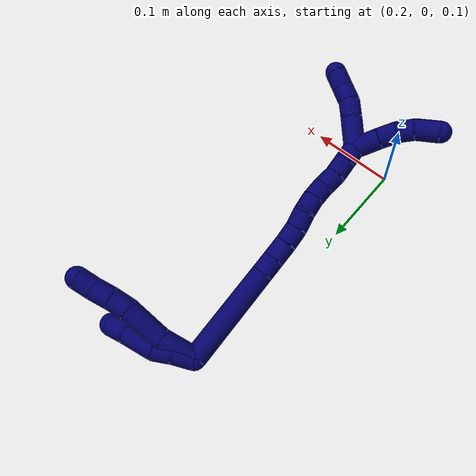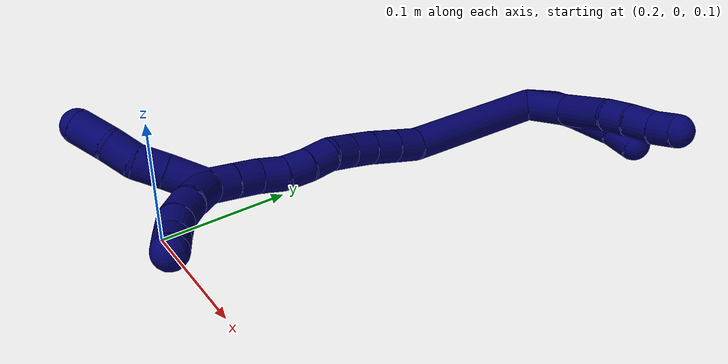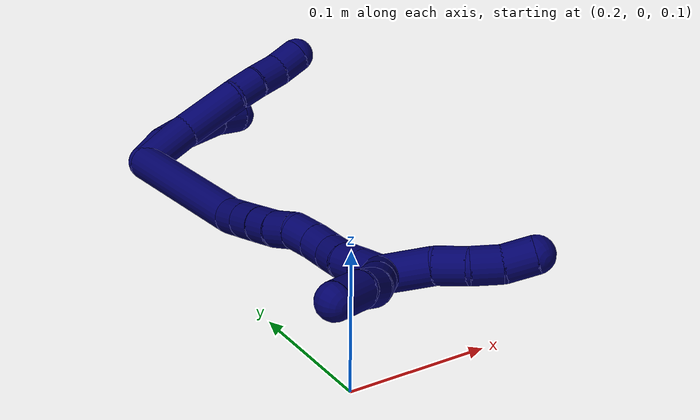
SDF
<sdf version="1.7">
 <world name="default">
  <model name="7">
   <static>0</static>
   <link name="7">
    <collision name="collision-cylinder-e_1_2_8">
     <pose>0.009123 0.018206 -0.00235 -1.69914 0.46122 -0.521892</pose>
     <geometry><cylinder><radius>0.0125</radius><length>0.040998</length></cylinder></geometry>
     <surface>
      <friction><ode><mu>1.16</mu><mu2>1.16</mu2><slip1>0</slip1><slip2>0</slip2></ode></friction>
      <contact><ode><kp>1e+06</kp><kd>1</kd><max_vel>0</max_vel><min_depth>0.001</min_depth></ode></contact>
     </surface>
    </collision>
    <visual name="visual-cylinder-e_1_2_8">
     <pose>0.009123 0.018206 -0.00235 -1.69914 0.46122 -0.521892</pose>
     <geometry><cylinder><radius>0.0125</radius><length>0.040998</length></cylinder></geometry>
     <material><ambient>0.003922 0 0.403922 1</ambient></material>
    </visual>
    <collision name="collision-cylinder-e_2_8_9">
     <pose>0.026501 0.058035 -0.002812 -1.48372 0.36345 -0.333688</pose>
     <geometry><cylinder><radius>0.0125</radius><length>0.046444</length></cylinder></geometry>
     <surface>
      <friction><ode><mu>1.16</mu><mu2>1.16</mu2><slip1>0</slip1><slip2>0</slip2></ode></friction>
      <contact><ode><kp>1e+06</kp><kd>1</kd><max_vel>0</max_vel><min_depth>0.001</min_depth></ode></contact>
     </surface>
    </collision>
    <visual name="visual-cylinder-e_2_8_9">
     <pose>0.026501 0.058035 -0.002812 -1.48372 0.36345 -0.333688</pose>
     <geometry><cylinder><radius>0.0125</radius><length>0.046444</length></cylinder></geometry>
     <material><ambient>0.003922 0 0.403922 1</ambient></material>
    </visual>
    <collision name="collision-cylinder-e_3_9_10">
     <pose>0.039763 0.088375 -0.00147 -1.63332 0.520448 -0.552416</pose>
     <geometry><cylinder><radius>0.0125</radius><length>0.020135</length></cylinder></geometry>
     <surface>
      <friction><ode><mu>1.16</mu><mu2>1.16</mu2><slip1>0</slip1><slip2>0</slip2></ode></friction>
      <contact><ode><kp>1e+06</kp><kd>1</kd><max_vel>0</max_vel><min_depth>0.001</min_depth></ode></contact>
     </surface>
    </collision>
    <visual name="visual-cylinder-e_3_9_10">
     <pose>0.039763 0.088375 -0.00147 -1.63332 0.520448 -0.552416</pose>
     <geometry><cylinder><radius>0.0125</radius><length>0.020135</length></cylinder></geometry>
     <material><ambient>0.003922 0 0.403922 1</ambient></material>
    </visual>
    <collision name="collision-cylinder-e_4_10_11">
     <pose>0.050996 0.105985 -0.003204 -1.70371 0.60677 -0.687015</pose>
     <geometry><cylinder><radius>0.0125</radius><length>0.021841</length></cylinder></geometry>
     <surface>
      <friction><ode><mu>1.16</mu><mu2>1.16</mu2><slip1>0</slip1><slip2>0</slip2></ode></friction>
      <contact><ode><kp>1e+06</kp><kd>1</kd><max_vel>0</max_vel><min_depth>0.001</min_depth></ode></contact>
     </surface>
    </collision>
    <visual name="visual-cylinder-e_4_10_11">
     <pose>0.050996 0.105985 -0.003204 -1.70371 0.60677 -0.687015</pose>
     <geometry><cylinder><radius>0.0125</radius><length>0.021841</length></cylinder></geometry>
     <material><ambient>0.003922 0 0.403922 1</ambient></material>
    </visual>
    <collision name="collision-cylinder-e_5_11_6">
     <pose>0.061617 0.12416 -0.005036 -1.63993 0.441155 -0.471635</pose>
     <geometry><cylinder><radius>0.0125</radius><length>0.020582</length></cylinder></geometry>
     <surface>
      <friction><ode><mu>1.16</mu><mu2>1.16</mu2><slip1>0</slip1><slip2>0</slip2></ode></friction>
      <contact><ode><kp>1e+06</kp><kd>1</kd><max_vel>0</max_vel><min_depth>0.001</min_depth></ode></contact>
     </surface>
    </collision>
    <visual name="visual-cylinder-e_5_11_6">
     <pose>0.061617 0.12416 -0.005036 -1.63993 0.441155 -0.471635</pose>
     <geometry><cylinder><radius>0.0125</radius><length>0.020582</length></cylinder></geometry>
     <material><ambient>0.003922 0 0.403922 1</ambient></material>
    </visual>
    <collision name="collision-cylinder-e_1_2_12">
     <pose>0.005308 0.009605 -0.004009 -1.96619 0.471585 -0.692224</pose>
     <geometry><cylinder><radius>0.0125</radius><length>0.023366</length></cylinder></geometry>
     <surface>
      <friction><ode><mu>1.16</mu><mu2>1.16</mu2><slip1>0</slip1><slip2>0</slip2></ode></friction>
      <contact><ode><kp>1e+06</kp><kd>1</kd><max_vel>0</max_vel><min_depth>0.001</min_depth></ode></contact>
     </surface>
    </collision>
    <visual name="visual-cylinder-e_1_2_12">
     <pose>0.005308 0.009605 -0.004009 -1.96619 0.471585 -0.692224</pose>
     <geometry><cylinder><radius>0.0125</radius><length>0.023366</length></cylinder></geometry>
     <material><ambient>0.003922 0 0.403922 1</ambient></material>
    </visual>
    <collision name="collision-cylinder-e_2_12_13">
     <pose>0.017442 0.025599 -0.011893 -2.11601 0.74021 -1.20675</pose>
     <geometry><cylinder><radius>0.0125</radius><length>0.020243</length></cylinder></geometry>
     <surface>
      <friction><ode><mu>1.16</mu><mu2>1.16</mu2><slip1>0</slip1><slip2>0</slip2></ode></friction>
      <contact><ode><kp>1e+06</kp><kd>1</kd><max_vel>0</max_vel><min_depth>0.001</min_depth></ode></contact>
     </surface>
    </collision>
    <visual name="visual-cylinder-e_2_12_13">
     <pose>0.017442 0.025599 -0.011893 -2.11601 0.74021 -1.20675</pose>
     <geometry><cylinder><radius>0.0125</radius><length>0.020243</length></cylinder></geometry>
     <material><ambient>0.003922 0 0.403922 1</ambient></material>
    </visual>
    <collision name="collision-cylinder-e_3_13_14">
     <pose>0.035707 0.045477 -0.016995 -1.66149 0.701338 -0.761979</pose>
     <geometry><cylinder><radius>0.0125</radius><length>0.035456</length></cylinder></geometry>
     <surface>
      <friction><ode><mu>1.16</mu><mu2>1.16</mu2><slip1>0</slip1><slip2>0</slip2></ode></friction>
      <contact><ode><kp>1e+06</kp><kd>1</kd><max_vel>0</max_vel><min_depth>0.001</min_depth></ode></contact>
     </surface>
    </collision>
    <visual name="visual-cylinder-e_3_13_14">
     <pose>0.035707 0.045477 -0.016995 -1.66149 0.701338 -0.761979</pose>
     <geometry><cylinder><radius>0.0125</radius><length>0.035456</length></cylinder></geometry>
     <material><ambient>0.003922 0 0.403922 1</ambient></material>
    </visual>
    <collision name="collision-cylinder-e_4_14_5">
     <pose>0.055523 0.065184 -0.019061 -1.70493 0.927892 -1.0398</pose>
     <geometry><cylinder><radius>0.0125</radius><length>0.020935</length></cylinder></geometry>
     <surface>
      <friction><ode><mu>1.16</mu><mu2>1.16</mu2><slip1>0</slip1><slip2>0</slip2></ode></friction>
      <contact><ode><kp>1e+06</kp><kd>1</kd><max_vel>0</max_vel><min_depth>0.001</min_depth></ode></contact>
     </surface>
    </collision>
    <visual name="visual-cylinder-e_4_14_5">
     <pose>0.055523 0.065184 -0.019061 -1.70493 0.927892 -1.0398</pose>
     <geometry><cylinder><radius>0.0125</radius><length>0.020935</length></cylinder></geometry>
     <material><ambient>0.003922 0 0.403922 1</ambient></material>
    </visual>
    <collision name="collision-cylinder-e_1_2_15">
     <pose>-0.003872 -0.001063 0.058174 0.018268 -0.066446 -0.000607</pose>
     <geometry><cylinder><radius>0.0125</radius><length>0.116625</length></cylinder></geometry>
     <surface>
      <friction><ode><mu>1.16</mu><mu2>1.16</mu2><slip1>0</slip1><slip2>0</slip2></ode></friction>
      <contact><ode><kp>1e+06</kp><kd>1</kd><max_vel>0</max_vel><min_depth>0.001</min_depth></ode></contact>
     </surface>
    </collision>
    <visual name="visual-cylinder-e_1_2_15">
     <pose>-0.003872 -0.001063 0.058174 0.018268 -0.066446 -0.000607</pose>
     <geometry><cylinder><radius>0.0125</radius><length>0.116625</length></cylinder></geometry>
     <material><ambient>0.003922 0 0.403922 1</ambient></material>
    </visual>
    <collision name="collision-cylinder-e_2_15_16">
     <pose>-0.010486 -0.001116 0.1266 -0.098144 -0.260198 0.012851</pose>
     <geometry><cylinder><radius>0.0125</radius><length>0.02132</length></cylinder></geometry>
     <surface>
      <friction><ode><mu>1.16</mu><mu2>1.16</mu2><slip1>0</slip1><slip2>0</slip2></ode></friction>
      <contact><ode><kp>1e+06</kp><kd>1</kd><max_vel>0</max_vel><min_depth>0.001</min_depth></ode></contact>
     </surface>
    </collision>
    <visual name="visual-cylinder-e_2_15_16">
     <pose>-0.010486 -0.001116 0.1266 -0.098144 -0.260198 0.012851</pose>
     <geometry><cylinder><radius>0.0125</radius><length>0.02132</length></cylinder></geometry>
     <material><ambient>0.003922 0 0.403922 1</ambient></material>
    </visual>
    <collision name="collision-cylinder-e_3_16_17">
     <pose>-0.016124 0.000991 0.147357 -0.104135 -0.267536 0.014026</pose>
     <geometry><cylinder><radius>0.0125</radius><length>0.021905</length></cylinder></geometry>
     <surface>
      <friction><ode><mu>1.16</mu><mu2>1.16</mu2><slip1>0</slip1><slip2>0</slip2></ode></friction>
      <contact><ode><kp>1e+06</kp><kd>1</kd><max_vel>0</max_vel><min_depth>0.001</min_depth></ode></contact>
     </surface>
    </collision>
    <visual name="visual-cylinder-e_3_16_17">
     <pose>-0.016124 0.000991 0.147357 -0.104135 -0.267536 0.014026</pose>
     <geometry><cylinder><radius>0.0125</radius><length>0.021905</length></cylinder></geometry>
     <material><ambient>0.003922 0 0.403922 1</ambient></material>
    </visual>
    <collision name="collision-cylinder-e_4_17_18">
     <pose>-0.020987 0.003315 0.167613 -0.125106 -0.197661 0.012421</pose>
     <geometry><cylinder><radius>0.0125</radius><length>0.020044</length></cylinder></geometry>
     <surface>
      <friction><ode><mu>1.16</mu><mu2>1.16</mu2><slip1>0</slip1><slip2>0</slip2></ode></friction>
      <contact><ode><kp>1e+06</kp><kd>1</kd><max_vel>0</max_vel><min_depth>0.001</min_depth></ode></contact>
     </surface>
    </collision>
    <visual name="visual-cylinder-e_4_17_18">
     <pose>-0.020987 0.003315 0.167613 -0.125106 -0.197661 0.012421</pose>
     <geometry><cylinder><radius>0.0125</radius><length>0.020044</length></cylinder></geometry>
     <material><ambient>0.003922 0 0.403922 1</ambient></material>
    </visual>
    <collision name="collision-cylinder-e_5_18_19">
     <pose>-0.024467 0.00717 0.186936 -0.268027 -0.151118 0.020412</pose>
     <geometry><cylinder><radius>0.0125</radius><length>0.020083</length></cylinder></geometry>
     <surface>
      <friction><ode><mu>1.16</mu><mu2>1.16</mu2><slip1>0</slip1><slip2>0</slip2></ode></friction>
      <contact><ode><kp>1e+06</kp><kd>1</kd><max_vel>0</max_vel><min_depth>0.001</min_depth></ode></contact>
     </surface>
    </collision>
    <visual name="visual-cylinder-e_5_18_19">
     <pose>-0.024467 0.00717 0.186936 -0.268027 -0.151118 0.020412</pose>
     <geometry><cylinder><radius>0.0125</radius><length>0.020083</length></cylinder></geometry>
     <material><ambient>0.003922 0 0.403922 1</ambient></material>
    </visual>
    <collision name="collision-cylinder-e_6_19_20">
     <pose>-0.025445 0.010072 0.206493 -0.027301 0.053369 -0.000729</pose>
     <geometry><cylinder><radius>0.0125</radius><length>0.020006</length></cylinder></geometry>
     <surface>
      <friction><ode><mu>1.16</mu><mu2>1.16</mu2><slip1>0</slip1><slip2>0</slip2></ode></friction>
      <contact><ode><kp>1e+06</kp><kd>1</kd><max_vel>0</max_vel><min_depth>0.001</min_depth></ode></contact>
     </surface>
    </collision>
    <visual name="visual-cylinder-e_6_19_20">
     <pose>-0.025445 0.010072 0.206493 -0.027301 0.053369 -0.000729</pose>
     <geometry><cylinder><radius>0.0125</radius><length>0.020006</length></cylinder></geometry>
     <material><ambient>0.003922 0 0.403922 1</ambient></material>
    </visual>
    <collision name="collision-cylinder-e_7_20_21">
     <pose>-0.02549 0.009863 0.226452 0.048225 -0.057807 -0.001395</pose>
     <geometry><cylinder><radius>0.0125</radius><length>0.020004</length></cylinder></geometry>
     <surface>
      <friction><ode><mu>1.16</mu><mu2>1.16</mu2><slip1>0</slip1><slip2>0</slip2></ode></friction>
      <contact><ode><kp>1e+06</kp><kd>1</kd><max_vel>0</max_vel><min_depth>0.001</min_depth></ode></contact>
     </surface>
    </collision>
    <visual name="visual-cylinder-e_7_20_21">
     <pose>-0.02549 0.009863 0.226452 0.048225 -0.057807 -0.001395</pose>
     <geometry><cylinder><radius>0.0125</radius><length>0.020004</length></cylinder></geometry>
     <material><ambient>0.003922 0 0.403922 1</ambient></material>
    </visual>
    <collision name="collision-cylinder-e_8_21_22">
     <pose>-0.028863 0.008934 0.246019 0.046631 -0.283307 -0.006651</pose>
     <geometry><cylinder><radius>0.0125</radius><length>0.020004</length></cylinder></geometry>
     <surface>
      <friction><ode><mu>1.16</mu><mu2>1.16</mu2><slip1>0</slip1><slip2>0</slip2></ode></friction>
      <contact><ode><kp>1e+06</kp><kd>1</kd><max_vel>0</max_vel><min_depth>0.001</min_depth></ode></contact>
     </surface>
    </collision>
    <visual name="visual-cylinder-e_8_21_22">
     <pose>-0.028863 0.008934 0.246019 0.046631 -0.283307 -0.006651</pose>
     <geometry><cylinder><radius>0.0125</radius><length>0.020004</length></cylinder></geometry>
     <material><ambient>0.003922 0 0.403922 1</ambient></material>
    </visual>
    <collision name="collision-cylinder-e_9_22_23">
     <pose>-0.033299 0.009469 0.265431 -0.099703 -0.164635 0.008233</pose>
     <geometry><cylinder><radius>0.0125</radius><length>0.020007</length></cylinder></geometry>
     <surface>
      <friction><ode><mu>1.16</mu><mu2>1.16</mu2><slip1>0</slip1><slip2>0</slip2></ode></friction>
      <contact><ode><kp>1e+06</kp><kd>1</kd><max_vel>0</max_vel><min_depth>0.001</min_depth></ode></contact>
     </surface>
    </collision>
    <visual name="visual-cylinder-e_9_22_23">
     <pose>-0.033299 0.009469 0.265431 -0.099703 -0.164635 0.008233</pose>
     <geometry><cylinder><radius>0.0125</radius><length>0.020007</length></cylinder></geometry>
     <material><ambient>0.003922 0 0.403922 1</ambient></material>
    </visual>
    <collision name="collision-cylinder-e_10_23_1">
     <pose>-0.036598 0.011227 0.285081 -0.078803 -0.166701 0.006587</pose>
     <geometry><cylinder><radius>0.0125</radius><length>0.020002</length></cylinder></geometry>
     <surface>
      <friction><ode><mu>1.16</mu><mu2>1.16</mu2><slip1>0</slip1><slip2>0</slip2></ode></friction>
      <contact><ode><kp>1e+06</kp><kd>1</kd><max_vel>0</max_vel><min_depth>0.001</min_depth></ode></contact>
     </surface>
    </collision>
    <visual name="visual-cylinder-e_10_23_1">
     <pose>-0.036598 0.011227 0.285081 -0.078803 -0.166701 0.006587</pose>
     <geometry><cylinder><radius>0.0125</radius><length>0.020002</length></cylinder></geometry>
     <material><ambient>0.003922 0 0.403922 1</ambient></material>
    </visual>
    <collision name="collision-cylinder-e_1_1_24">
     <pose>-0.034719 0.023351 0.308512 -0.695394 0.197173 -0.071661</pose>
     <geometry><cylinder><radius>0.0125</radius><length>0.036122</length></cylinder></geometry>
     <surface>
      <friction><ode><mu>1.16</mu><mu2>1.16</mu2><slip1>0</slip1><slip2>0</slip2></ode></friction>
      <contact><ode><kp>1e+06</kp><kd>1</kd><max_vel>0</max_vel><min_depth>0.001</min_depth></ode></contact>
     </surface>
    </collision>
    <visual name="visual-cylinder-e_1_1_24">
     <pose>-0.034719 0.023351 0.308512 -0.695394 0.197173 -0.071661</pose>
     <geometry><cylinder><radius>0.0125</radius><length>0.036122</length></cylinder></geometry>
     <material><ambient>0.003922 0 0.403922 1</ambient></material>
    </visual>
    <collision name="collision-cylinder-e_2_24_25">
     <pose>-0.027503 0.040311 0.330783 -0.574364 0.342042 -0.101929</pose>
     <geometry><cylinder><radius>0.0125</radius><length>0.021932</length></cylinder></geometry>
     <surface>
      <friction><ode><mu>1.16</mu><mu2>1.16</mu2><slip1>0</slip1><slip2>0</slip2></ode></friction>
      <contact><ode><kp>1e+06</kp><kd>1</kd><max_vel>0</max_vel><min_depth>0.001</min_depth></ode></contact>
     </surface>
    </collision>
    <visual name="visual-cylinder-e_2_24_25">
     <pose>-0.027503 0.040311 0.330783 -0.574364 0.342042 -0.101929</pose>
     <geometry><cylinder><radius>0.0125</radius><length>0.021932</length></cylinder></geometry>
     <material><ambient>0.003922 0 0.403922 1</ambient></material>
    </visual>
    <collision name="collision-cylinder-e_3_25_26">
     <pose>-0.018583 0.05219 0.345773 -0.781365 0.532358 -0.223646</pose>
     <geometry><cylinder><radius>0.0125</radius><length>0.020653</length></cylinder></geometry>
     <surface>
      <friction><ode><mu>1.16</mu><mu2>1.16</mu2><slip1>0</slip1><slip2>0</slip2></ode></friction>
      <contact><ode><kp>1e+06</kp><kd>1</kd><max_vel>0</max_vel><min_depth>0.001</min_depth></ode></contact>
     </surface>
    </collision>
    <visual name="visual-cylinder-e_3_25_26">
     <pose>-0.018583 0.05219 0.345773 -0.781365 0.532358 -0.223646</pose>
     <geometry><cylinder><radius>0.0125</radius><length>0.020653</length></cylinder></geometry>
     <material><ambient>0.003922 0 0.403922 1</ambient></material>
    </visual>
    <collision name="collision-cylinder-e_4_26_4">
     <pose>-0.009462 0.066614 0.357723 -0.966437 0.373073 -0.197414</pose>
     <geometry><cylinder><radius>0.0125</radius><length>0.021293</length></cylinder></geometry>
     <surface>
      <friction><ode><mu>1.16</mu><mu2>1.16</mu2><slip1>0</slip1><slip2>0</slip2></ode></friction>
      <contact><ode><kp>1e+06</kp><kd>1</kd><max_vel>0</max_vel><min_depth>0.001</min_depth></ode></contact>
     </surface>
    </collision>
    <visual name="visual-cylinder-e_4_26_4">
     <pose>-0.009462 0.066614 0.357723 -0.966437 0.373073 -0.197414</pose>
     <geometry><cylinder><radius>0.0125</radius><length>0.021293</length></cylinder></geometry>
     <material><ambient>0.003922 0 0.403922 1</ambient></material>
    </visual>
    <collision name="collision-cylinder-e_1_1_27">
     <pose>-0.048706 0.008628 0.304919 0.325418 -0.780137 -0.13478</pose>
     <geometry><cylinder><radius>0.0125</radius><length>0.029712</length></cylinder></geometry>
     <surface>
      <friction><ode><mu>1.16</mu><mu2>1.16</mu2><slip1>0</slip1><slip2>0</slip2></ode></friction>
      <contact><ode><kp>1e+06</kp><kd>1</kd><max_vel>0</max_vel><min_depth>0.001</min_depth></ode></contact>
     </surface>
    </collision>
    <visual name="visual-cylinder-e_1_1_27">
     <pose>-0.048706 0.008628 0.304919 0.325418 -0.780137 -0.13478</pose>
     <geometry><cylinder><radius>0.0125</radius><length>0.029712</length></cylinder></geometry>
     <material><ambient>0.003922 0 0.403922 1</ambient></material>
    </visual>
    <collision name="collision-cylinder-e_2_27_28">
     <pose>-0.066522 0.002323 0.322249 0.380407 -0.75117 -0.15154</pose>
     <geometry><cylinder><radius>0.0125</radius><length>0.021586</length></cylinder></geometry>
     <surface>
      <friction><ode><mu>1.16</mu><mu2>1.16</mu2><slip1>0</slip1><slip2>0</slip2></ode></friction>
      <contact><ode><kp>1e+06</kp><kd>1</kd><max_vel>0</max_vel><min_depth>0.001</min_depth></ode></contact>
     </surface>
    </collision>
    <visual name="visual-cylinder-e_2_27_28">
     <pose>-0.066522 0.002323 0.322249 0.380407 -0.75117 -0.15154</pose>
     <geometry><cylinder><radius>0.0125</radius><length>0.021586</length></cylinder></geometry>
     <material><ambient>0.003922 0 0.403922 1</ambient></material>
    </visual>
    <collision name="collision-cylinder-e_3_28_29">
     <pose>-0.082727 -0.003977 0.334016 0.6491 -1.00798 -0.366923</pose>
     <geometry><cylinder><radius>0.0125</radius><length>0.020901</length></cylinder></geometry>
     <surface>
      <friction><ode><mu>1.16</mu><mu2>1.16</mu2><slip1>0</slip1><slip2>0</slip2></ode></friction>
      <contact><ode><kp>1e+06</kp><kd>1</kd><max_vel>0</max_vel><min_depth>0.001</min_depth></ode></contact>
     </surface>
    </collision>
    <visual name="visual-cylinder-e_3_28_29">
     <pose>-0.082727 -0.003977 0.334016 0.6491 -1.00798 -0.366923</pose>
     <geometry><cylinder><radius>0.0125</radius><length>0.020901</length></cylinder></geometry>
     <material><ambient>0.003922 0 0.403922 1</ambient></material>
    </visual>
    <collision name="collision-cylinder-e_4_29_3">
     <pose>-0.102264 -0.015047 0.342872 1.05024 -0.87831 -0.531452</pose>
     <geometry><cylinder><radius>0.0125</radius><length>0.027801</length></cylinder></geometry>
     <surface>
      <friction><ode><mu>1.16</mu><mu2>1.16</mu2><slip1>0</slip1><slip2>0</slip2></ode></friction>
      <contact><ode><kp>1e+06</kp><kd>1</kd><max_vel>0</max_vel><min_depth>0.001</min_depth></ode></contact>
     </surface>
    </collision>
    <visual name="visual-cylinder-e_4_29_3">
     <pose>-0.102264 -0.015047 0.342872 1.05024 -0.87831 -0.531452</pose>
     <geometry><cylinder><radius>0.0125</radius><length>0.027801</length></cylinder></geometry>
     <material><ambient>0.003922 0 0.403922 1</ambient></material>
    </visual>
    <collision name="collision-sphere-3">
     <pose>-0.112963 -0.022746 0.347286 0 -0 0</pose>
     <geometry><sphere><radius>0.0125</radius></sphere></geometry>
     <surface>
      <friction><ode><mu>1.16</mu><mu2>1.16</mu2><slip1>0</slip1><slip2>0</slip2></ode></friction>
      <contact><ode><kp>1e+06</kp><kd>1</kd><max_vel>0</max_vel><min_depth>0.001</min_depth></ode></contact>
     </surface>
    </collision>
    <visual name="visual-sphere-3">
     <pose>-0.112963 -0.022746 0.347286 0 -0 0</pose>
     <geometry><sphere><radius>0.0125</radius></sphere></geometry>
     <material><ambient>0.003922 0 0.403922 1</ambient></material>
    </visual>
    <collision name="collision-sphere-29">
     <pose>-0.091565 -0.007347 0.338458 0 -0 0</pose>
     <geometry><sphere><radius>0.0125</radius></sphere></geometry>
     <surface>
      <friction><ode><mu>1.16</mu><mu2>1.16</mu2><slip1>0</slip1><slip2>0</slip2></ode></friction>
      <contact><ode><kp>1e+06</kp><kd>1</kd><max_vel>0</max_vel><min_depth>0.001</min_depth></ode></contact>
     </surface>
    </collision>
    <visual name="visual-sphere-29">
     <pose>-0.091565 -0.007347 0.338458 0 -0 0</pose>
     <geometry><sphere><radius>0.0125</radius></sphere></geometry>
     <material><ambient>0.003922 0 0.403922 1</ambient></material>
    </visual>
    <collision name="collision-sphere-28">
     <pose>-0.073888 -0.000606 0.329573 0 -0 0</pose>
     <geometry><sphere><radius>0.0125</radius></sphere></geometry>
     <surface>
      <friction><ode><mu>1.16</mu><mu2>1.16</mu2><slip1>0</slip1><slip2>0</slip2></ode></friction>
      <contact><ode><kp>1e+06</kp><kd>1</kd><max_vel>0</max_vel><min_depth>0.001</min_depth></ode></contact>
     </surface>
    </collision>
    <visual name="visual-sphere-28">
     <pose>-0.073888 -0.000606 0.329573 0 -0 0</pose>
     <geometry><sphere><radius>0.0125</radius></sphere></geometry>
     <material><ambient>0.003922 0 0.403922 1</ambient></material>
    </visual>
    <collision name="collision-sphere-27">
     <pose>-0.059156 0.005252 0.314924 0 -0 0</pose>
     <geometry><sphere><radius>0.0125</radius></sphere></geometry>
     <surface>
      <friction><ode><mu>1.16</mu><mu2>1.16</mu2><slip1>0</slip1><slip2>0</slip2></ode></friction>
      <contact><ode><kp>1e+06</kp><kd>1</kd><max_vel>0</max_vel><min_depth>0.001</min_depth></ode></contact>
     </surface>
    </collision>
    <visual name="visual-sphere-27">
     <pose>-0.059156 0.005252 0.314924 0 -0 0</pose>
     <geometry><sphere><radius>0.0125</radius></sphere></geometry>
     <material><ambient>0.003922 0 0.403922 1</ambient></material>
    </visual>
    <collision name="collision-sphere-4">
     <pose>-0.005581 0.074772 0.363357 0 -0 0</pose>
     <geometry><sphere><radius>0.0125</radius></sphere></geometry>
     <surface>
      <friction><ode><mu>1.16</mu><mu2>1.16</mu2><slip1>0</slip1><slip2>0</slip2></ode></friction>
      <contact><ode><kp>1e+06</kp><kd>1</kd><max_vel>0</max_vel><min_depth>0.001</min_depth></ode></contact>
     </surface>
    </collision>
    <visual name="visual-sphere-4">
     <pose>-0.005581 0.074772 0.363357 0 -0 0</pose>
     <geometry><sphere><radius>0.0125</radius></sphere></geometry>
     <material><ambient>0.003922 0 0.403922 1</ambient></material>
    </visual>
    <collision name="collision-sphere-26">
     <pose>-0.013342 0.058456 0.35209 0 -0 0</pose>
     <geometry><sphere><radius>0.0125</radius></sphere></geometry>
     <surface>
      <friction><ode><mu>1.16</mu><mu2>1.16</mu2><slip1>0</slip1><slip2>0</slip2></ode></friction>
      <contact><ode><kp>1e+06</kp><kd>1</kd><max_vel>0</max_vel><min_depth>0.001</min_depth></ode></contact>
     </surface>
    </collision>
    <visual name="visual-sphere-26">
     <pose>-0.013342 0.058456 0.35209 0 -0 0</pose>
     <geometry><sphere><radius>0.0125</radius></sphere></geometry>
     <material><ambient>0.003922 0 0.403922 1</ambient></material>
    </visual>
    <collision name="collision-sphere-25">
     <pose>-0.023825 0.045924 0.339456 0 -0 0</pose>
     <geometry><sphere><radius>0.0125</radius></sphere></geometry>
     <surface>
      <friction><ode><mu>1.16</mu><mu2>1.16</mu2><slip1>0</slip1><slip2>0</slip2></ode></friction>
      <contact><ode><kp>1e+06</kp><kd>1</kd><max_vel>0</max_vel><min_depth>0.001</min_depth></ode></contact>
     </surface>
    </collision>
    <visual name="visual-sphere-25">
     <pose>-0.023825 0.045924 0.339456 0 -0 0</pose>
     <geometry><sphere><radius>0.0125</radius></sphere></geometry>
     <material><ambient>0.003922 0 0.403922 1</ambient></material>
    </visual>
    <collision name="collision-sphere-24">
     <pose>-0.031181 0.034698 0.32211 0 -0 0</pose>
     <geometry><sphere><radius>0.0125</radius></sphere></geometry>
     <surface>
      <friction><ode><mu>1.16</mu><mu2>1.16</mu2><slip1>0</slip1><slip2>0</slip2></ode></friction>
      <contact><ode><kp>1e+06</kp><kd>1</kd><max_vel>0</max_vel><min_depth>0.001</min_depth></ode></contact>
     </surface>
    </collision>
    <visual name="visual-sphere-24">
     <pose>-0.031181 0.034698 0.32211 0 -0 0</pose>
     <geometry><sphere><radius>0.0125</radius></sphere></geometry>
     <material><ambient>0.003922 0 0.403922 1</ambient></material>
    </visual>
    <collision name="collision-sphere-1">
     <pose>-0.038257 0.012004 0.294913 0 -0 0</pose>
     <geometry><sphere><radius>0.0125</radius></sphere></geometry>
     <surface>
      <friction><ode><mu>1.16</mu><mu2>1.16</mu2><slip1>0</slip1><slip2>0</slip2></ode></friction>
      <contact><ode><kp>1e+06</kp><kd>1</kd><max_vel>0</max_vel><min_depth>0.001</min_depth></ode></contact>
     </surface>
    </collision>
    <visual name="visual-sphere-1">
     <pose>-0.038257 0.012004 0.294913 0 -0 0</pose>
     <geometry><sphere><radius>0.0125</radius></sphere></geometry>
     <material><ambient>0.003922 0 0.403922 1</ambient></material>
    </visual>
    <collision name="collision-sphere-23">
     <pose>-0.034938 0.010451 0.27525 0 -0 0</pose>
     <geometry><sphere><radius>0.0125</radius></sphere></geometry>
     <surface>
      <friction><ode><mu>1.16</mu><mu2>1.16</mu2><slip1>0</slip1><slip2>0</slip2></ode></friction>
      <contact><ode><kp>1e+06</kp><kd>1</kd><max_vel>0</max_vel><min_depth>0.001</min_depth></ode></contact>
     </surface>
    </collision>
    <visual name="visual-sphere-23">
     <pose>-0.034938 0.010451 0.27525 0 -0 0</pose>
     <geometry><sphere><radius>0.0125</radius></sphere></geometry>
     <material><ambient>0.003922 0 0.403922 1</ambient></material>
    </visual>
    <collision name="collision-sphere-22">
     <pose>-0.031659 0.008487 0.255612 0 -0 0</pose>
     <geometry><sphere><radius>0.0125</radius></sphere></geometry>
     <surface>
      <friction><ode><mu>1.16</mu><mu2>1.16</mu2><slip1>0</slip1><slip2>0</slip2></ode></friction>
      <contact><ode><kp>1e+06</kp><kd>1</kd><max_vel>0</max_vel><min_depth>0.001</min_depth></ode></contact>
     </surface>
    </collision>
    <visual name="visual-sphere-22">
     <pose>-0.031659 0.008487 0.255612 0 -0 0</pose>
     <geometry><sphere><radius>0.0125</radius></sphere></geometry>
     <material><ambient>0.003922 0 0.403922 1</ambient></material>
    </visual>
    <collision name="collision-sphere-21">
     <pose>-0.026067 0.009382 0.236426 0 -0 0</pose>
     <geometry><sphere><radius>0.0125</radius></sphere></geometry>
     <surface>
      <friction><ode><mu>1.16</mu><mu2>1.16</mu2><slip1>0</slip1><slip2>0</slip2></ode></friction>
      <contact><ode><kp>1e+06</kp><kd>1</kd><max_vel>0</max_vel><min_depth>0.001</min_depth></ode></contact>
     </surface>
    </collision>
    <visual name="visual-sphere-21">
     <pose>-0.026067 0.009382 0.236426 0 -0 0</pose>
     <geometry><sphere><radius>0.0125</radius></sphere></geometry>
     <material><ambient>0.003922 0 0.403922 1</ambient></material>
    </visual>
    <collision name="collision-sphere-6">
     <pose>0.066011 0.133444 -0.005679 0 -0 0</pose>
     <geometry><sphere><radius>0.0125</radius></sphere></geometry>
     <surface>
      <friction><ode><mu>1.16</mu><mu2>1.16</mu2><slip1>0</slip1><slip2>0</slip2></ode></friction>
      <contact><ode><kp>1e+06</kp><kd>1</kd><max_vel>0</max_vel><min_depth>0.001</min_depth></ode></contact>
     </surface>
    </collision>
    <visual name="visual-sphere-6">
     <pose>0.066011 0.133444 -0.005679 0 -0 0</pose>
     <geometry><sphere><radius>0.0125</radius></sphere></geometry>
     <material><ambient>0.003922 0 0.403922 1</ambient></material>
    </visual>
    <collision name="collision-sphere-11">
     <pose>0.057223 0.114877 -0.004393 0 -0 0</pose>
     <geometry><sphere><radius>0.0125</radius></sphere></geometry>
     <surface>
      <friction><ode><mu>1.16</mu><mu2>1.16</mu2><slip1>0</slip1><slip2>0</slip2></ode></friction>
      <contact><ode><kp>1e+06</kp><kd>1</kd><max_vel>0</max_vel><min_depth>0.001</min_depth></ode></contact>
     </surface>
    </collision>
    <visual name="visual-sphere-11">
     <pose>0.057223 0.114877 -0.004393 0 -0 0</pose>
     <geometry><sphere><radius>0.0125</radius></sphere></geometry>
     <material><ambient>0.003922 0 0.403922 1</ambient></material>
    </visual>
    <collision name="collision-sphere-10">
     <pose>0.044769 0.097093 -0.002015 0 -0 0</pose>
     <geometry><sphere><radius>0.0125</radius></sphere></geometry>
     <surface>
      <friction><ode><mu>1.16</mu><mu2>1.16</mu2><slip1>0</slip1><slip2>0</slip2></ode></friction>
      <contact><ode><kp>1e+06</kp><kd>1</kd><max_vel>0</max_vel><min_depth>0.001</min_depth></ode></contact>
     </surface>
    </collision>
    <visual name="visual-sphere-10">
     <pose>0.044769 0.097093 -0.002015 0 -0 0</pose>
     <geometry><sphere><radius>0.0125</radius></sphere></geometry>
     <material><ambient>0.003922 0 0.403922 1</ambient></material>
    </visual>
    <collision name="collision-sphere-9">
     <pose>0.034757 0.079658 -0.000924 0 -0 0</pose>
     <geometry><sphere><radius>0.0125</radius></sphere></geometry>
     <surface>
      <friction><ode><mu>1.16</mu><mu2>1.16</mu2><slip1>0</slip1><slip2>0</slip2></ode></friction>
      <contact><ode><kp>1e+06</kp><kd>1</kd><max_vel>0</max_vel><min_depth>0.001</min_depth></ode></contact>
     </surface>
    </collision>
    <visual name="visual-sphere-9">
     <pose>0.034757 0.079658 -0.000924 0 -0 0</pose>
     <geometry><sphere><radius>0.0125</radius></sphere></geometry>
     <material><ambient>0.003922 0 0.403922 1</ambient></material>
    </visual>
    <collision name="collision-sphere-2">
     <geometry><sphere><radius>0.0125</radius></sphere></geometry>
     <surface>
      <friction><ode><mu>1.16</mu><mu2>1.16</mu2><slip1>0</slip1><slip2>0</slip2></ode></friction>
      <contact><ode><kp>1e+06</kp><kd>1</kd><max_vel>0</max_vel><min_depth>0.001</min_depth></ode></contact>
     </surface>
    </collision>
    <visual name="visual-sphere-2">
     <geometry><sphere><radius>0.0125</radius></sphere></geometry>
     <material><ambient>0.003922 0 0.403922 1</ambient></material>
    </visual>
    <collision name="collision-sphere-19">
     <pose>-0.025979 0.009799 0.196509 0 -0 0</pose>
     <geometry><sphere><radius>0.0125</radius></sphere></geometry>
     <surface>
      <friction><ode><mu>1.16</mu><mu2>1.16</mu2><slip1>0</slip1><slip2>0</slip2></ode></friction>
      <contact><ode><kp>1e+06</kp><kd>1</kd><max_vel>0</max_vel><min_depth>0.001</min_depth></ode></contact>
     </surface>
    </collision>
    <visual name="visual-sphere-19">
     <pose>-0.025979 0.009799 0.196509 0 -0 0</pose>
     <geometry><sphere><radius>0.0125</radius></sphere></geometry>
     <material><ambient>0.003922 0 0.403922 1</ambient></material>
    </visual>
    <collision name="collision-sphere-8">
     <pose>0.018246 0.036412 -0.004699 0 -0 0</pose>
     <geometry><sphere><radius>0.0125</radius></sphere></geometry>
     <surface>
      <friction><ode><mu>1.16</mu><mu2>1.16</mu2><slip1>0</slip1><slip2>0</slip2></ode></friction>
      <contact><ode><kp>1e+06</kp><kd>1</kd><max_vel>0</max_vel><min_depth>0.001</min_depth></ode></contact>
     </surface>
    </collision>
    <visual name="visual-sphere-8">
     <pose>0.018246 0.036412 -0.004699 0 -0 0</pose>
     <geometry><sphere><radius>0.0125</radius></sphere></geometry>
     <material><ambient>0.003922 0 0.403922 1</ambient></material>
    </visual>
    <collision name="collision-sphere-12">
     <pose>0.010615 0.01921 -0.008018 0 -0 0</pose>
     <geometry><sphere><radius>0.0125</radius></sphere></geometry>
     <surface>
      <friction><ode><mu>1.16</mu><mu2>1.16</mu2><slip1>0</slip1><slip2>0</slip2></ode></friction>
      <contact><ode><kp>1e+06</kp><kd>1</kd><max_vel>0</max_vel><min_depth>0.001</min_depth></ode></contact>
     </surface>
    </collision>
    <visual name="visual-sphere-12">
     <pose>0.010615 0.01921 -0.008018 0 -0 0</pose>
     <geometry><sphere><radius>0.0125</radius></sphere></geometry>
     <material><ambient>0.003922 0 0.403922 1</ambient></material>
    </visual>
    <collision name="collision-sphere-13">
     <pose>0.024268 0.031989 -0.015769 0 -0 0</pose>
     <geometry><sphere><radius>0.0125</radius></sphere></geometry>
     <surface>
      <friction><ode><mu>1.16</mu><mu2>1.16</mu2><slip1>0</slip1><slip2>0</slip2></ode></friction>
      <contact><ode><kp>1e+06</kp><kd>1</kd><max_vel>0</max_vel><min_depth>0.001</min_depth></ode></contact>
     </surface>
    </collision>
    <visual name="visual-sphere-13">
     <pose>0.024268 0.031989 -0.015769 0 -0 0</pose>
     <geometry><sphere><radius>0.0125</radius></sphere></geometry>
     <material><ambient>0.003922 0 0.403922 1</ambient></material>
    </visual>
    <collision name="collision-sphere-14">
     <pose>0.047145 0.058965 -0.018222 0 -0 0</pose>
     <geometry><sphere><radius>0.0125</radius></sphere></geometry>
     <surface>
      <friction><ode><mu>1.16</mu><mu2>1.16</mu2><slip1>0</slip1><slip2>0</slip2></ode></friction>
      <contact><ode><kp>1e+06</kp><kd>1</kd><max_vel>0</max_vel><min_depth>0.001</min_depth></ode></contact>
     </surface>
    </collision>
    <visual name="visual-sphere-14">
     <pose>0.047145 0.058965 -0.018222 0 -0 0</pose>
     <geometry><sphere><radius>0.0125</radius></sphere></geometry>
     <material><ambient>0.003922 0 0.403922 1</ambient></material>
    </visual>
    <collision name="collision-sphere-5">
     <pose>0.063901 0.071403 -0.0199 0 -0 0</pose>
     <geometry><sphere><radius>0.0125</radius></sphere></geometry>
     <surface>
      <friction><ode><mu>1.16</mu><mu2>1.16</mu2><slip1>0</slip1><slip2>0</slip2></ode></friction>
      <contact><ode><kp>1e+06</kp><kd>1</kd><max_vel>0</max_vel><min_depth>0.001</min_depth></ode></contact>
     </surface>
    </collision>
    <visual name="visual-sphere-5">
     <pose>0.063901 0.071403 -0.0199 0 -0 0</pose>
     <geometry><sphere><radius>0.0125</radius></sphere></geometry>
     <material><ambient>0.003922 0 0.403922 1</ambient></material>
    </visual>
    <collision name="collision-sphere-15">
     <pose>-0.007744 -0.002126 0.116349 0 -0 0</pose>
     <geometry><sphere><radius>0.0125</radius></sphere></geometry>
     <surface>
      <friction><ode><mu>1.16</mu><mu2>1.16</mu2><slip1>0</slip1><slip2>0</slip2></ode></friction>
      <contact><ode><kp>1e+06</kp><kd>1</kd><max_vel>0</max_vel><min_depth>0.001</min_depth></ode></contact>
     </surface>
    </collision>
    <visual name="visual-sphere-15">
     <pose>-0.007744 -0.002126 0.116349 0 -0 0</pose>
     <geometry><sphere><radius>0.0125</radius></sphere></geometry>
     <material><ambient>0.003922 0 0.403922 1</ambient></material>
    </visual>
    <collision name="collision-sphere-16">
     <pose>-0.013229 -0.000107 0.136852 0 -0 0</pose>
     <geometry><sphere><radius>0.0125</radius></sphere></geometry>
     <surface>
      <friction><ode><mu>1.16</mu><mu2>1.16</mu2><slip1>0</slip1><slip2>0</slip2></ode></friction>
      <contact><ode><kp>1e+06</kp><kd>1</kd><max_vel>0</max_vel><min_depth>0.001</min_depth></ode></contact>
     </surface>
    </collision>
    <visual name="visual-sphere-16">
     <pose>-0.013229 -0.000107 0.136852 0 -0 0</pose>
     <geometry><sphere><radius>0.0125</radius></sphere></geometry>
     <material><ambient>0.003922 0 0.403922 1</ambient></material>
    </visual>
    <collision name="collision-sphere-17">
     <pose>-0.019019 0.002089 0.157863 0 -0 0</pose>
     <geometry><sphere><radius>0.0125</radius></sphere></geometry>
     <surface>
      <friction><ode><mu>1.16</mu><mu2>1.16</mu2><slip1>0</slip1><slip2>0</slip2></ode></friction>
      <contact><ode><kp>1e+06</kp><kd>1</kd><max_vel>0</max_vel><min_depth>0.001</min_depth></ode></contact>
     </surface>
    </collision>
    <visual name="visual-sphere-17">
     <pose>-0.019019 0.002089 0.157863 0 -0 0</pose>
     <geometry><sphere><radius>0.0125</radius></sphere></geometry>
     <material><ambient>0.003922 0 0.403922 1</ambient></material>
    </visual>
    <collision name="collision-sphere-18">
     <pose>-0.022956 0.004541 0.177364 0 -0 0</pose>
     <geometry><sphere><radius>0.0125</radius></sphere></geometry>
     <surface>
      <friction><ode><mu>1.16</mu><mu2>1.16</mu2><slip1>0</slip1><slip2>0</slip2></ode></friction>
      <contact><ode><kp>1e+06</kp><kd>1</kd><max_vel>0</max_vel><min_depth>0.001</min_depth></ode></contact>
     </surface>
    </collision>
    <visual name="visual-sphere-18">
     <pose>-0.022956 0.004541 0.177364 0 -0 0</pose>
     <geometry><sphere><radius>0.0125</radius></sphere></geometry>
     <material><ambient>0.003922 0 0.403922 1</ambient></material>
    </visual>
    <collision name="collision-sphere-20">
     <pose>-0.024912 0.010345 0.216478 0 -0 0</pose>
     <geometry><sphere><radius>0.0125</radius></sphere></geometry>
     <surface>
      <friction><ode><mu>1.16</mu><mu2>1.16</mu2><slip1>0</slip1><slip2>0</slip2></ode></friction>
      <contact><ode><kp>1e+06</kp><kd>1</kd><max_vel>0</max_vel><min_depth>0.001</min_depth></ode></contact>
     </surface>
    </collision>
    <visual name="visual-sphere-20">
     <pose>-0.024912 0.010345 0.216478 0 -0 0</pose>
     <geometry><sphere><radius>0.0125</radius></sphere></geometry>
     <material><ambient>0.003922 0 0.403922 1</ambient></material>
    </visual>
    <inertial>
     <pose>-0.00952 0.025221 0.144454 0 -0 0</pose>
     <mass>0.75</mass>
     <inertia><ixx>0.000175</ixx><ixy>0</ixy><ixz>0</ixz><iyy>0.000176</iyy><iyz>0</iyz><izz>1e-06</izz></inertia>
    </inertial>
   </link>
   <pose>0.223626 0.318071 0.117159 1.53116 0.812303 0.077034</pose>
  </model>
 </world>
</sdf>
